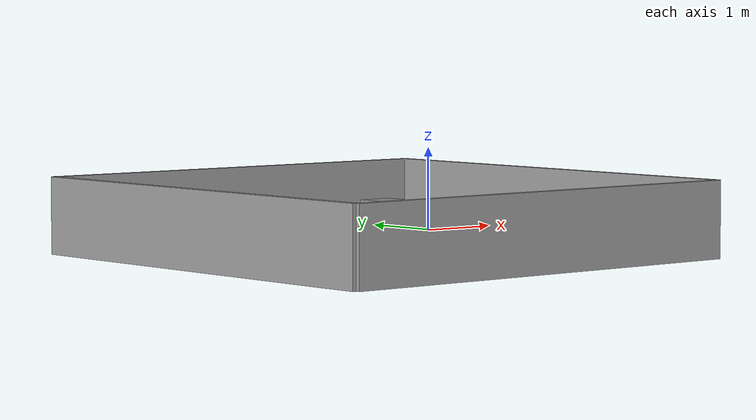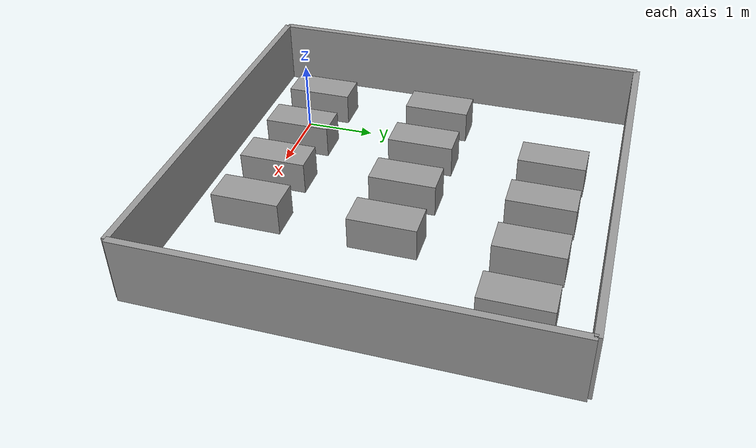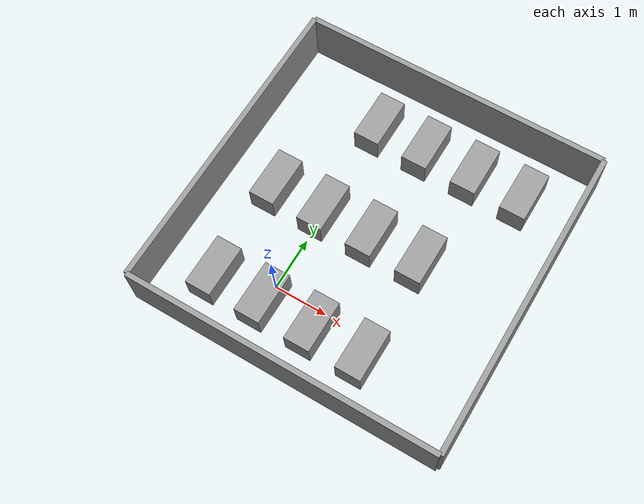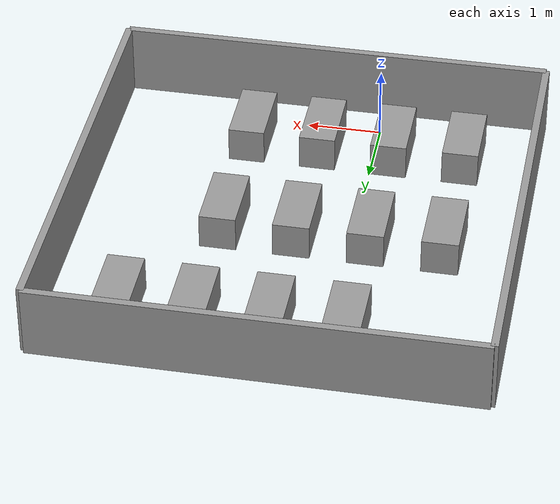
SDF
<?xml version='1.0'?>
<sdf version='1.7'>
  <model name='map_model'>
    <link name='link_0_clone'>
      <inertial>
        <mass>1</mass>
        <inertia>
          <ixx>0.166667</ixx>
          <ixy>0</ixy>
          <ixz>0</ixz>
          <iyy>0.166667</iyy>
          <iyz>0</iyz>
          <izz>0.166667</izz>
        </inertia>
        <pose>0 0 0 0 -0 0</pose>
      </inertial>
      <pose>0.836322 -1.19926 -0 0 -0 0</pose>
      <gravity>1</gravity>
      <self_collide>0</self_collide>
      <kinematic>0</kinematic>
      <enable_wind>0</enable_wind>
      <visual name='visual'>
        <pose>0 0 0 0 -0 0</pose>
        <geometry>
          <box>
            <size>6 0.1 1</size>
          </box>
        </geometry>
        <material>
          <lighting>1</lighting>
          <script>
            <uri>file://media/materials/scripts/gazebo.material</uri>
            <name>Gazebo/Grey</name>
          </script>
          <shader type='pixel'>
            <normal_map>__default__</normal_map>
          </shader>
          <ambient>0.3 0.3 0.3 1</ambient>
          <diffuse>0.7 0.7 0.7 1</diffuse>
          <specular>0.01 0.01 0.01 1</specular>
          <emissive>0 0 0 1</emissive>
        </material>
        <transparency>0</transparency>
        <cast_shadows>1</cast_shadows>
      </visual>
      <collision name='collision'>
        <laser_retro>0</laser_retro>
        <max_contacts>10</max_contacts>
        <pose>0 0 0 0 -0 0</pose>
        <geometry>
          <box>
            <size>6 0.1 1</size>
          </box>
        </geometry>
        <surface>
          <friction>
            <ode>
              <mu>1</mu>
              <mu2>1</mu2>
              <fdir1>0 0 0</fdir1>
              <slip1>0</slip1>
              <slip2>0</slip2>
            </ode>
            <torsional>
              <coefficient>1</coefficient>
              <patch_radius>0</patch_radius>
              <surface_radius>0</surface_radius>
              <use_patch_radius>1</use_patch_radius>
              <ode>
                <slip>0</slip>
              </ode>
            </torsional>
          </friction>
          <bounce>
            <restitution_coefficient>0</restitution_coefficient>
            <threshold>1e+06</threshold>
          </bounce>
          <contact>
            <collide_without_contact>0</collide_without_contact>
            <collide_without_contact_bitmask>1</collide_without_contact_bitmask>
            <collide_bitmask>1</collide_bitmask>
            <ode>
              <soft_cfm>0</soft_cfm>
              <soft_erp>0.2</soft_erp>
              <kp>1e+13</kp>
              <kd>1</kd>
              <max_vel>0.01</max_vel>
              <min_depth>0</min_depth>
            </ode>
            <bullet>
              <split_impulse>1</split_impulse>
              <split_impulse_penetration_threshold>-0.01</split_impulse_penetration_threshold>
              <soft_cfm>0</soft_cfm>
              <soft_erp>0.2</soft_erp>
              <kp>1e+13</kp>
              <kd>1</kd>
            </bullet>
          </contact>
        </surface>
      </collision>
    </link>
    <link name='link_0_clone_0'>
      <inertial>
        <mass>1</mass>
        <inertia>
          <ixx>0.166667</ixx>
          <ixy>0</ixy>
          <ixz>0</ixz>
          <iyy>0.166667</iyy>
          <iyz>0</iyz>
          <izz>0.166667</izz>
        </inertia>
        <pose>0 0 0 0 -0 0</pose>
      </inertial>
      <pose>0.836322 4.80074 0 0 -0 0</pose>
      <gravity>1</gravity>
      <self_collide>0</self_collide>
      <kinematic>0</kinematic>
      <enable_wind>0</enable_wind>
      <visual name='visual'>
        <pose>0 0 0 0 -0 0</pose>
        <geometry>
          <box>
            <size>6 0.1 1</size>
          </box>
        </geometry>
        <material>
          <lighting>1</lighting>
          <script>
            <uri>file://media/materials/scripts/gazebo.material</uri>
            <name>Gazebo/Grey</name>
          </script>
          <shader type='pixel'>
            <normal_map>__default__</normal_map>
          </shader>
          <ambient>0.3 0.3 0.3 1</ambient>
          <diffuse>0.7 0.7 0.7 1</diffuse>
          <specular>0.01 0.01 0.01 1</specular>
          <emissive>0 0 0 1</emissive>
        </material>
        <transparency>0</transparency>
        <cast_shadows>1</cast_shadows>
      </visual>
      <collision name='collision'>
        <laser_retro>0</laser_retro>
        <max_contacts>10</max_contacts>
        <pose>0 0 0 0 -0 0</pose>
        <geometry>
          <box>
            <size>6 0.1 1</size>
          </box>
        </geometry>
        <surface>
          <friction>
            <ode>
              <mu>1</mu>
              <mu2>1</mu2>
              <fdir1>0 0 0</fdir1>
              <slip1>0</slip1>
              <slip2>0</slip2>
            </ode>
            <torsional>
              <coefficient>1</coefficient>
              <patch_radius>0</patch_radius>
              <surface_radius>0</surface_radius>
              <use_patch_radius>1</use_patch_radius>
              <ode>
                <slip>0</slip>
              </ode>
            </torsional>
          </friction>
          <bounce>
            <restitution_coefficient>0</restitution_coefficient>
            <threshold>1e+06</threshold>
          </bounce>
          <contact>
            <collide_without_contact>0</collide_without_contact>
            <collide_without_contact_bitmask>1</collide_without_contact_bitmask>
            <collide_bitmask>1</collide_bitmask>
            <ode>
              <soft_cfm>0</soft_cfm>
              <soft_erp>0.2</soft_erp>
              <kp>1e+13</kp>
              <kd>1</kd>
              <max_vel>0.01</max_vel>
              <min_depth>0</min_depth>
            </ode>
            <bullet>
              <split_impulse>1</split_impulse>
              <split_impulse_penetration_threshold>-0.01</split_impulse_penetration_threshold>
              <soft_cfm>0</soft_cfm>
              <soft_erp>0.2</soft_erp>
              <kp>1e+13</kp>
              <kd>1</kd>
            </bullet>
          </contact>
        </surface>
      </collision>
    </link>
    <link name='link_0_clone_1'>
      <inertial>
        <mass>1</mass>
        <inertia>
          <ixx>0.166667</ixx>
          <ixy>0</ixy>
          <ixz>0</ixz>
          <iyy>0.166667</iyy>
          <iyz>0</iyz>
          <izz>0.166667</izz>
        </inertia>
        <pose>0 0 0 0 -0 0</pose>
      </inertial>
      <pose>3.83632 1.80074 0 0 -0 0</pose>
      <gravity>1</gravity>
      <self_collide>0</self_collide>
      <kinematic>0</kinematic>
      <enable_wind>0</enable_wind>
      <visual name='visual'>
        <pose>0 0 0 0 -0 0</pose>
        <geometry>
          <box>
            <size>0.1 6 1</size>
          </box>
        </geometry>
        <material>
          <lighting>1</lighting>
          <script>
            <uri>file://media/materials/scripts/gazebo.material</uri>
            <name>Gazebo/Grey</name>
          </script>
          <shader type='pixel'>
            <normal_map>__default__</normal_map>
          </shader>
          <ambient>0.3 0.3 0.3 1</ambient>
          <diffuse>0.7 0.7 0.7 1</diffuse>
          <specular>0.01 0.01 0.01 1</specular>
          <emissive>0 0 0 1</emissive>
        </material>
        <transparency>0</transparency>
        <cast_shadows>1</cast_shadows>
      </visual>
      <collision name='collision'>
        <laser_retro>0</laser_retro>
        <max_contacts>10</max_contacts>
        <pose>0 0 0 0 -0 0</pose>
        <geometry>
          <box>
            <size>0.1 6 1</size>
          </box>
        </geometry>
        <surface>
          <friction>
            <ode>
              <mu>1</mu>
              <mu2>1</mu2>
              <fdir1>0 0 0</fdir1>
              <slip1>0</slip1>
              <slip2>0</slip2>
            </ode>
            <torsional>
              <coefficient>1</coefficient>
              <patch_radius>0</patch_radius>
              <surface_radius>0</surface_radius>
              <use_patch_radius>1</use_patch_radius>
              <ode>
                <slip>0</slip>
              </ode>
            </torsional>
          </friction>
          <bounce>
            <restitution_coefficient>0</restitution_coefficient>
            <threshold>1e+06</threshold>
          </bounce>
          <contact>
            <collide_without_contact>0</collide_without_contact>
            <collide_without_contact_bitmask>1</collide_without_contact_bitmask>
            <collide_bitmask>1</collide_bitmask>
            <ode>
              <soft_cfm>0</soft_cfm>
              <soft_erp>0.2</soft_erp>
              <kp>1e+13</kp>
              <kd>1</kd>
              <max_vel>0.01</max_vel>
              <min_depth>0</min_depth>
            </ode>
            <bullet>
              <split_impulse>1</split_impulse>
              <split_impulse_penetration_threshold>-0.01</split_impulse_penetration_threshold>
              <soft_cfm>0</soft_cfm>
              <soft_erp>0.2</soft_erp>
              <kp>1e+13</kp>
              <kd>1</kd>
            </bullet>
          </contact>
        </surface>
      </collision>
    </link>
    <link name='link_0_clone_1_clone'>
      <inertial>
        <mass>1</mass>
        <inertia>
          <ixx>0.166667</ixx>
          <ixy>0</ixy>
          <ixz>0</ixz>
          <iyy>0.166667</iyy>
          <iyz>0</iyz>
          <izz>0.166667</izz>
        </inertia>
        <pose>0 0 0 0 -0 0</pose>
      </inertial>
      <pose>-2.16368 1.80074 0 0 -0 0</pose>
      <gravity>1</gravity>
      <self_collide>0</self_collide>
      <kinematic>0</kinematic>
      <enable_wind>0</enable_wind>
      <visual name='visual'>
        <pose>0 0 0 0 -0 0</pose>
        <geometry>
          <box>
            <size>0.1 6 1</size>
          </box>
        </geometry>
        <material>
          <lighting>1</lighting>
          <script>
            <uri>file://media/materials/scripts/gazebo.material</uri>
            <name>Gazebo/Grey</name>
          </script>
          <shader type='pixel'>
            <normal_map>__default__</normal_map>
          </shader>
          <ambient>0.3 0.3 0.3 1</ambient>
          <diffuse>0.7 0.7 0.7 1</diffuse>
          <specular>0.01 0.01 0.01 1</specular>
          <emissive>0 0 0 1</emissive>
        </material>
        <transparency>0</transparency>
        <cast_shadows>1</cast_shadows>
      </visual>
      <collision name='collision'>
        <laser_retro>0</laser_retro>
        <max_contacts>10</max_contacts>
        <pose>0 0 0 0 -0 0</pose>
        <geometry>
          <box>
            <size>0.1 6 1</size>
          </box>
        </geometry>
        <surface>
          <friction>
            <ode>
              <mu>1</mu>
              <mu2>1</mu2>
              <fdir1>0 0 0</fdir1>
              <slip1>0</slip1>
              <slip2>0</slip2>
            </ode>
            <torsional>
              <coefficient>1</coefficient>
              <patch_radius>0</patch_radius>
              <surface_radius>0</surface_radius>
              <use_patch_radius>1</use_patch_radius>
              <ode>
                <slip>0</slip>
              </ode>
            </torsional>
          </friction>
          <bounce>
            <restitution_coefficient>0</restitution_coefficient>
            <threshold>1e+06</threshold>
          </bounce>
          <contact>
            <collide_without_contact>0</collide_without_contact>
            <collide_without_contact_bitmask>1</collide_without_contact_bitmask>
            <collide_bitmask>1</collide_bitmask>
            <ode>
              <soft_cfm>0</soft_cfm>
              <soft_erp>0.2</soft_erp>
              <kp>1e+13</kp>
              <kd>1</kd>
              <max_vel>0.01</max_vel>
              <min_depth>0</min_depth>
            </ode>
            <bullet>
              <split_impulse>1</split_impulse>
              <split_impulse_penetration_threshold>-0.01</split_impulse_penetration_threshold>
              <soft_cfm>0</soft_cfm>
              <soft_erp>0.2</soft_erp>
              <kp>1e+13</kp>
              <kd>1</kd>
            </bullet>
          </contact>
        </surface>
      </collision>
    </link>
    <link name='link_1_clone'>
      <inertial>
        <mass>1</mass>
        <inertia>
          <ixx>0.166667</ixx>
          <ixy>0</ixy>
          <ixz>0</ixz>
          <iyy>0.166667</iyy>
          <iyz>0</iyz>
          <izz>0.166667</izz>
        </inertia>
        <pose>0 0 0 0 -0 0</pose>
      </inertial>
      <pose>1.83632 1.80074 -0.25 0 -0 0</pose>
      <gravity>1</gravity>
      <self_collide>0</self_collide>
      <kinematic>0</kinematic>
      <enable_wind>0</enable_wind>
      <visual name='visual'>
        <pose>0 0 0 0 -0 0</pose>
        <geometry>
          <box>
            <size>0.5 1 0.5</size>
          </box>
        </geometry>
        <material>
          <lighting>1</lighting>
          <script>
            <uri>file://media/materials/scripts/gazebo.material</uri>
            <name>Gazebo/Grey</name>
          </script>
          <shader type='pixel'>
            <normal_map>__default__</normal_map>
          </shader>
          <ambient>0.3 0.3 0.3 1</ambient>
          <diffuse>0.7 0.7 0.7 1</diffuse>
          <specular>0.01 0.01 0.01 1</specular>
          <emissive>0 0 0 1</emissive>
        </material>
        <transparency>0</transparency>
        <cast_shadows>1</cast_shadows>
      </visual>
      <collision name='collision'>
        <laser_retro>0</laser_retro>
        <max_contacts>10</max_contacts>
        <pose>0 0 0 0 -0 0</pose>
        <geometry>
          <box>
            <size>0.5 1 0.5</size>
          </box>
        </geometry>
        <surface>
          <friction>
            <ode>
              <mu>1</mu>
              <mu2>1</mu2>
              <fdir1>0 0 0</fdir1>
              <slip1>0</slip1>
              <slip2>0</slip2>
            </ode>
            <torsional>
              <coefficient>1</coefficient>
              <patch_radius>0</patch_radius>
              <surface_radius>0</surface_radius>
              <use_patch_radius>1</use_patch_radius>
              <ode>
                <slip>0</slip>
              </ode>
            </torsional>
          </friction>
          <bounce>
            <restitution_coefficient>0</restitution_coefficient>
            <threshold>1e+06</threshold>
          </bounce>
          <contact>
            <collide_without_contact>0</collide_without_contact>
            <collide_without_contact_bitmask>1</collide_without_contact_bitmask>
            <collide_bitmask>1</collide_bitmask>
            <ode>
              <soft_cfm>0</soft_cfm>
              <soft_erp>0.2</soft_erp>
              <kp>1e+13</kp>
              <kd>1</kd>
              <max_vel>0.01</max_vel>
              <min_depth>0</min_depth>
            </ode>
            <bullet>
              <split_impulse>1</split_impulse>
              <split_impulse_penetration_threshold>-0.01</split_impulse_penetration_threshold>
              <soft_cfm>0</soft_cfm>
              <soft_erp>0.2</soft_erp>
              <kp>1e+13</kp>
              <kd>1</kd>
            </bullet>
          </contact>
        </surface>
      </collision>
    </link>
    <link name='link_1_clone_clone'>
      <inertial>
        <mass>1</mass>
        <inertia>
          <ixx>0.166667</ixx>
          <ixy>0</ixy>
          <ixz>0</ixz>
          <iyy>0.166667</iyy>
          <iyz>0</iyz>
          <izz>0.166667</izz>
        </inertia>
        <pose>0 0 0 0 -0 0</pose>
      </inertial>
      <pose>-1.16368 -0.19926 -0.25 0 -0 0</pose>
      <gravity>1</gravity>
      <self_collide>0</self_collide>
      <kinematic>0</kinematic>
      <enable_wind>0</enable_wind>
      <visual name='visual'>
        <pose>0 0 0 0 -0 0</pose>
        <geometry>
          <box>
            <size>0.5 1 0.5</size>
          </box>
        </geometry>
        <material>
          <lighting>1</lighting>
          <script>
            <uri>file://media/materials/scripts/gazebo.material</uri>
            <name>Gazebo/Grey</name>
          </script>
          <shader type='pixel'>
            <normal_map>__default__</normal_map>
          </shader>
          <ambient>0.3 0.3 0.3 1</ambient>
          <diffuse>0.7 0.7 0.7 1</diffuse>
          <specular>0.01 0.01 0.01 1</specular>
          <emissive>0 0 0 1</emissive>
        </material>
        <transparency>0</transparency>
        <cast_shadows>1</cast_shadows>
      </visual>
      <collision name='collision'>
        <laser_retro>0</laser_retro>
        <max_contacts>10</max_contacts>
        <pose>0 0 0 0 -0 0</pose>
        <geometry>
          <box>
            <size>0.5 1 0.5</size>
          </box>
        </geometry>
        <surface>
          <friction>
            <ode>
              <mu>1</mu>
              <mu2>1</mu2>
              <fdir1>0 0 0</fdir1>
              <slip1>0</slip1>
              <slip2>0</slip2>
            </ode>
            <torsional>
              <coefficient>1</coefficient>
              <patch_radius>0</patch_radius>
              <surface_radius>0</surface_radius>
              <use_patch_radius>1</use_patch_radius>
              <ode>
                <slip>0</slip>
              </ode>
            </torsional>
          </friction>
          <bounce>
            <restitution_coefficient>0</restitution_coefficient>
            <threshold>1e+06</threshold>
          </bounce>
          <contact>
            <collide_without_contact>0</collide_without_contact>
            <collide_without_contact_bitmask>1</collide_without_contact_bitmask>
            <collide_bitmask>1</collide_bitmask>
            <ode>
              <soft_cfm>0</soft_cfm>
              <soft_erp>0.2</soft_erp>
              <kp>1e+13</kp>
              <kd>1</kd>
              <max_vel>0.01</max_vel>
              <min_depth>0</min_depth>
            </ode>
            <bullet>
              <split_impulse>1</split_impulse>
              <split_impulse_penetration_threshold>-0.01</split_impulse_penetration_threshold>
              <soft_cfm>0</soft_cfm>
              <soft_erp>0.2</soft_erp>
              <kp>1e+13</kp>
              <kd>1</kd>
            </bullet>
          </contact>
        </surface>
      </collision>
    </link>
    <link name='link_1_clone_clone_0'>
      <inertial>
        <mass>1</mass>
        <inertia>
          <ixx>0.166667</ixx>
          <ixy>0</ixy>
          <ixz>0</ixz>
          <iyy>0.166667</iyy>
          <iyz>0</iyz>
          <izz>0.166667</izz>
        </inertia>
        <pose>0 0 0 0 -0 0</pose>
      </inertial>
      <pose>-0.163678 -0.19926 -0.25 0 -0 0</pose>
      <gravity>1</gravity>
      <self_collide>0</self_collide>
      <kinematic>0</kinematic>
      <enable_wind>0</enable_wind>
      <visual name='visual'>
        <pose>0 0 0 0 -0 0</pose>
        <geometry>
          <box>
            <size>0.5 1 0.5</size>
          </box>
        </geometry>
        <material>
          <lighting>1</lighting>
          <script>
            <uri>file://media/materials/scripts/gazebo.material</uri>
            <name>Gazebo/Grey</name>
          </script>
          <shader type='pixel'>
            <normal_map>__default__</normal_map>
          </shader>
          <ambient>0.3 0.3 0.3 1</ambient>
          <diffuse>0.7 0.7 0.7 1</diffuse>
          <specular>0.01 0.01 0.01 1</specular>
          <emissive>0 0 0 1</emissive>
        </material>
        <transparency>0</transparency>
        <cast_shadows>1</cast_shadows>
      </visual>
      <collision name='collision'>
        <laser_retro>0</laser_retro>
        <max_contacts>10</max_contacts>
        <pose>0 0 0 0 -0 0</pose>
        <geometry>
          <box>
            <size>0.5 1 0.5</size>
          </box>
        </geometry>
        <surface>
          <friction>
            <ode>
              <mu>1</mu>
              <mu2>1</mu2>
              <fdir1>0 0 0</fdir1>
              <slip1>0</slip1>
              <slip2>0</slip2>
            </ode>
            <torsional>
              <coefficient>1</coefficient>
              <patch_radius>0</patch_radius>
              <surface_radius>0</surface_radius>
              <use_patch_radius>1</use_patch_radius>
              <ode>
                <slip>0</slip>
              </ode>
            </torsional>
          </friction>
          <bounce>
            <restitution_coefficient>0</restitution_coefficient>
            <threshold>1e+06</threshold>
          </bounce>
          <contact>
            <collide_without_contact>0</collide_without_contact>
            <collide_without_contact_bitmask>1</collide_without_contact_bitmask>
            <collide_bitmask>1</collide_bitmask>
            <ode>
              <soft_cfm>0</soft_cfm>
              <soft_erp>0.2</soft_erp>
              <kp>1e+13</kp>
              <kd>1</kd>
              <max_vel>0.01</max_vel>
              <min_depth>0</min_depth>
            </ode>
            <bullet>
              <split_impulse>1</split_impulse>
              <split_impulse_penetration_threshold>-0.01</split_impulse_penetration_threshold>
              <soft_cfm>0</soft_cfm>
              <soft_erp>0.2</soft_erp>
              <kp>1e+13</kp>
              <kd>1</kd>
            </bullet>
          </contact>
        </surface>
      </collision>
    </link>
    <link name='link_1_clone_clone_1'>
      <inertial>
        <mass>1</mass>
        <inertia>
          <ixx>0.166667</ixx>
          <ixy>0</ixy>
          <ixz>0</ixz>
          <iyy>0.166667</iyy>
          <iyz>0</iyz>
          <izz>0.166667</izz>
        </inertia>
        <pose>0 0 0 0 -0 0</pose>
      </inertial>
      <pose>0.836322 -0.19926 -0.25 0 -0 0</pose>
      <gravity>1</gravity>
      <self_collide>0</self_collide>
      <kinematic>0</kinematic>
      <enable_wind>0</enable_wind>
      <visual name='visual'>
        <pose>0 0 0 0 -0 0</pose>
        <geometry>
          <box>
            <size>0.5 1 0.5</size>
          </box>
        </geometry>
        <material>
          <lighting>1</lighting>
          <script>
            <uri>file://media/materials/scripts/gazebo.material</uri>
            <name>Gazebo/Grey</name>
          </script>
          <shader type='pixel'>
            <normal_map>__default__</normal_map>
          </shader>
          <ambient>0.3 0.3 0.3 1</ambient>
          <diffuse>0.7 0.7 0.7 1</diffuse>
          <specular>0.01 0.01 0.01 1</specular>
          <emissive>0 0 0 1</emissive>
        </material>
        <transparency>0</transparency>
        <cast_shadows>1</cast_shadows>
      </visual>
      <collision name='collision'>
        <laser_retro>0</laser_retro>
        <max_contacts>10</max_contacts>
        <pose>0 0 0 0 -0 0</pose>
        <geometry>
          <box>
            <size>0.5 1 0.5</size>
          </box>
        </geometry>
        <surface>
          <friction>
            <ode>
              <mu>1</mu>
              <mu2>1</mu2>
              <fdir1>0 0 0</fdir1>
              <slip1>0</slip1>
              <slip2>0</slip2>
            </ode>
            <torsional>
              <coefficient>1</coefficient>
              <patch_radius>0</patch_radius>
              <surface_radius>0</surface_radius>
              <use_patch_radius>1</use_patch_radius>
              <ode>
                <slip>0</slip>
              </ode>
            </torsional>
          </friction>
          <bounce>
            <restitution_coefficient>0</restitution_coefficient>
            <threshold>1e+06</threshold>
          </bounce>
          <contact>
            <collide_without_contact>0</collide_without_contact>
            <collide_without_contact_bitmask>1</collide_without_contact_bitmask>
            <collide_bitmask>1</collide_bitmask>
            <ode>
              <soft_cfm>0</soft_cfm>
              <soft_erp>0.2</soft_erp>
              <kp>1e+13</kp>
              <kd>1</kd>
              <max_vel>0.01</max_vel>
              <min_depth>0</min_depth>
            </ode>
            <bullet>
              <split_impulse>1</split_impulse>
              <split_impulse_penetration_threshold>-0.01</split_impulse_penetration_threshold>
              <soft_cfm>0</soft_cfm>
              <soft_erp>0.2</soft_erp>
              <kp>1e+13</kp>
              <kd>1</kd>
            </bullet>
          </contact>
        </surface>
      </collision>
    </link>
    <link name='link_1_clone_clone_2'>
      <inertial>
        <mass>1</mass>
        <inertia>
          <ixx>0.166667</ixx>
          <ixy>0</ixy>
          <ixz>0</ixz>
          <iyy>0.166667</iyy>
          <iyz>0</iyz>
          <izz>0.166667</izz>
        </inertia>
        <pose>0 0 0 0 -0 0</pose>
      </inertial>
      <pose>1.83632 -0.19926 -0.25 0 -0 0</pose>
      <gravity>1</gravity>
      <self_collide>0</self_collide>
      <kinematic>0</kinematic>
      <enable_wind>0</enable_wind>
      <visual name='visual'>
        <pose>0 0 0 0 -0 0</pose>
        <geometry>
          <box>
            <size>0.5 1 0.5</size>
          </box>
        </geometry>
        <material>
          <lighting>1</lighting>
          <script>
            <uri>file://media/materials/scripts/gazebo.material</uri>
            <name>Gazebo/Grey</name>
          </script>
          <shader type='pixel'>
            <normal_map>__default__</normal_map>
          </shader>
          <ambient>0.3 0.3 0.3 1</ambient>
          <diffuse>0.7 0.7 0.7 1</diffuse>
          <specular>0.01 0.01 0.01 1</specular>
          <emissive>0 0 0 1</emissive>
        </material>
        <transparency>0</transparency>
        <cast_shadows>1</cast_shadows>
      </visual>
      <collision name='collision'>
        <laser_retro>0</laser_retro>
        <max_contacts>10</max_contacts>
        <pose>0 0 0 0 -0 0</pose>
        <geometry>
          <box>
            <size>0.5 1 0.5</size>
          </box>
        </geometry>
        <surface>
          <friction>
            <ode>
              <mu>1</mu>
              <mu2>1</mu2>
              <fdir1>0 0 0</fdir1>
              <slip1>0</slip1>
              <slip2>0</slip2>
            </ode>
            <torsional>
              <coefficient>1</coefficient>
              <patch_radius>0</patch_radius>
              <surface_radius>0</surface_radius>
              <use_patch_radius>1</use_patch_radius>
              <ode>
                <slip>0</slip>
              </ode>
            </torsional>
          </friction>
          <bounce>
            <restitution_coefficient>0</restitution_coefficient>
            <threshold>1e+06</threshold>
          </bounce>
          <contact>
            <collide_without_contact>0</collide_without_contact>
            <collide_without_contact_bitmask>1</collide_without_contact_bitmask>
            <collide_bitmask>1</collide_bitmask>
            <ode>
              <soft_cfm>0</soft_cfm>
              <soft_erp>0.2</soft_erp>
              <kp>1e+13</kp>
              <kd>1</kd>
              <max_vel>0.01</max_vel>
              <min_depth>0</min_depth>
            </ode>
            <bullet>
              <split_impulse>1</split_impulse>
              <split_impulse_penetration_threshold>-0.01</split_impulse_penetration_threshold>
              <soft_cfm>0</soft_cfm>
              <soft_erp>0.2</soft_erp>
              <kp>1e+13</kp>
              <kd>1</kd>
            </bullet>
          </contact>
        </surface>
      </collision>
    </link>
    <link name='link_1_clone_clone_3'>
      <inertial>
        <mass>1</mass>
        <inertia>
          <ixx>0.166667</ixx>
          <ixy>0</ixy>
          <ixz>0</ixz>
          <iyy>0.166667</iyy>
          <iyz>0</iyz>
          <izz>0.166667</izz>
        </inertia>
        <pose>0 0 0 0 -0 0</pose>
      </inertial>
      <pose>0.836322 1.80074 -0.25 0 -0 0</pose>
      <gravity>1</gravity>
      <self_collide>0</self_collide>
      <kinematic>0</kinematic>
      <enable_wind>0</enable_wind>
      <visual name='visual'>
        <pose>0 0 0 0 -0 0</pose>
        <geometry>
          <box>
            <size>0.5 1 0.5</size>
          </box>
        </geometry>
        <material>
          <lighting>1</lighting>
          <script>
            <uri>file://media/materials/scripts/gazebo.material</uri>
            <name>Gazebo/Grey</name>
          </script>
          <shader type='pixel'>
            <normal_map>__default__</normal_map>
          </shader>
          <ambient>0.3 0.3 0.3 1</ambient>
          <diffuse>0.7 0.7 0.7 1</diffuse>
          <specular>0.01 0.01 0.01 1</specular>
          <emissive>0 0 0 1</emissive>
        </material>
        <transparency>0</transparency>
        <cast_shadows>1</cast_shadows>
      </visual>
      <collision name='collision'>
        <laser_retro>0</laser_retro>
        <max_contacts>10</max_contacts>
        <pose>0 0 0 0 -0 0</pose>
        <geometry>
          <box>
            <size>0.5 1 0.5</size>
          </box>
        </geometry>
        <surface>
          <friction>
            <ode>
              <mu>1</mu>
              <mu2>1</mu2>
              <fdir1>0 0 0</fdir1>
              <slip1>0</slip1>
              <slip2>0</slip2>
            </ode>
            <torsional>
              <coefficient>1</coefficient>
              <patch_radius>0</patch_radius>
              <surface_radius>0</surface_radius>
              <use_patch_radius>1</use_patch_radius>
              <ode>
                <slip>0</slip>
              </ode>
            </torsional>
          </friction>
          <bounce>
            <restitution_coefficient>0</restitution_coefficient>
            <threshold>1e+06</threshold>
          </bounce>
          <contact>
            <collide_without_contact>0</collide_without_contact>
            <collide_without_contact_bitmask>1</collide_without_contact_bitmask>
            <collide_bitmask>1</collide_bitmask>
            <ode>
              <soft_cfm>0</soft_cfm>
              <soft_erp>0.2</soft_erp>
              <kp>1e+13</kp>
              <kd>1</kd>
              <max_vel>0.01</max_vel>
              <min_depth>0</min_depth>
            </ode>
            <bullet>
              <split_impulse>1</split_impulse>
              <split_impulse_penetration_threshold>-0.01</split_impulse_penetration_threshold>
              <soft_cfm>0</soft_cfm>
              <soft_erp>0.2</soft_erp>
              <kp>1e+13</kp>
              <kd>1</kd>
            </bullet>
          </contact>
        </surface>
      </collision>
    </link>
    <link name='link_1_clone_clone_4'>
      <inertial>
        <mass>1</mass>
        <inertia>
          <ixx>0.166667</ixx>
          <ixy>0</ixy>
          <ixz>0</ixz>
          <iyy>0.166667</iyy>
          <iyz>0</iyz>
          <izz>0.166667</izz>
        </inertia>
        <pose>0 0 0 0 -0 0</pose>
      </inertial>
      <pose>-1.16368 1.80074 -0.25 0 -0 0</pose>
      <gravity>1</gravity>
      <self_collide>0</self_collide>
      <kinematic>0</kinematic>
      <enable_wind>0</enable_wind>
      <visual name='visual'>
        <pose>0 0 0 0 -0 0</pose>
        <geometry>
          <box>
            <size>0.5 1 0.5</size>
          </box>
        </geometry>
        <material>
          <lighting>1</lighting>
          <script>
            <uri>file://media/materials/scripts/gazebo.material</uri>
            <name>Gazebo/Grey</name>
          </script>
          <shader type='pixel'>
            <normal_map>__default__</normal_map>
          </shader>
          <ambient>0.3 0.3 0.3 1</ambient>
          <diffuse>0.7 0.7 0.7 1</diffuse>
          <specular>0.01 0.01 0.01 1</specular>
          <emissive>0 0 0 1</emissive>
        </material>
        <transparency>0</transparency>
        <cast_shadows>1</cast_shadows>
      </visual>
      <collision name='collision'>
        <laser_retro>0</laser_retro>
        <max_contacts>10</max_contacts>
        <pose>0 0 0 0 -0 0</pose>
        <geometry>
          <box>
            <size>0.5 1 0.5</size>
          </box>
        </geometry>
        <surface>
          <friction>
            <ode>
              <mu>1</mu>
              <mu2>1</mu2>
              <fdir1>0 0 0</fdir1>
              <slip1>0</slip1>
              <slip2>0</slip2>
            </ode>
            <torsional>
              <coefficient>1</coefficient>
              <patch_radius>0</patch_radius>
              <surface_radius>0</surface_radius>
              <use_patch_radius>1</use_patch_radius>
              <ode>
                <slip>0</slip>
              </ode>
            </torsional>
          </friction>
          <bounce>
            <restitution_coefficient>0</restitution_coefficient>
            <threshold>1e+06</threshold>
          </bounce>
          <contact>
            <collide_without_contact>0</collide_without_contact>
            <collide_without_contact_bitmask>1</collide_without_contact_bitmask>
            <collide_bitmask>1</collide_bitmask>
            <ode>
              <soft_cfm>0</soft_cfm>
              <soft_erp>0.2</soft_erp>
              <kp>1e+13</kp>
              <kd>1</kd>
              <max_vel>0.01</max_vel>
              <min_depth>0</min_depth>
            </ode>
            <bullet>
              <split_impulse>1</split_impulse>
              <split_impulse_penetration_threshold>-0.01</split_impulse_penetration_threshold>
              <soft_cfm>0</soft_cfm>
              <soft_erp>0.2</soft_erp>
              <kp>1e+13</kp>
              <kd>1</kd>
            </bullet>
          </contact>
        </surface>
      </collision>
    </link>
    <link name='link_1_clone_clone_5'>
      <inertial>
        <mass>1</mass>
        <inertia>
          <ixx>0.166667</ixx>
          <ixy>0</ixy>
          <ixz>0</ixz>
          <iyy>0.166667</iyy>
          <iyz>0</iyz>
          <izz>0.166667</izz>
        </inertia>
        <pose>0 0 0 0 -0 0</pose>
      </inertial>
      <pose>-0.163678 1.80074 -0.25 0 -0 0</pose>
      <gravity>1</gravity>
      <self_collide>0</self_collide>
      <kinematic>0</kinematic>
      <enable_wind>0</enable_wind>
      <visual name='visual'>
        <pose>0 0 0 0 -0 0</pose>
        <geometry>
          <box>
            <size>0.5 1 0.5</size>
          </box>
        </geometry>
        <material>
          <lighting>1</lighting>
          <script>
            <uri>file://media/materials/scripts/gazebo.material</uri>
            <name>Gazebo/Grey</name>
          </script>
          <shader type='pixel'>
            <normal_map>__default__</normal_map>
          </shader>
          <ambient>0.3 0.3 0.3 1</ambient>
          <diffuse>0.7 0.7 0.7 1</diffuse>
          <specular>0.01 0.01 0.01 1</specular>
          <emissive>0 0 0 1</emissive>
        </material>
        <transparency>0</transparency>
        <cast_shadows>1</cast_shadows>
      </visual>
      <collision name='collision'>
        <laser_retro>0</laser_retro>
        <max_contacts>10</max_contacts>
        <pose>0 0 0 0 -0 0</pose>
        <geometry>
          <box>
            <size>0.5 1 0.5</size>
          </box>
        </geometry>
        <surface>
          <friction>
            <ode>
              <mu>1</mu>
              <mu2>1</mu2>
              <fdir1>0 0 0</fdir1>
              <slip1>0</slip1>
              <slip2>0</slip2>
            </ode>
            <torsional>
              <coefficient>1</coefficient>
              <patch_radius>0</patch_radius>
              <surface_radius>0</surface_radius>
              <use_patch_radius>1</use_patch_radius>
              <ode>
                <slip>0</slip>
              </ode>
            </torsional>
          </friction>
          <bounce>
            <restitution_coefficient>0</restitution_coefficient>
            <threshold>1e+06</threshold>
          </bounce>
          <contact>
            <collide_without_contact>0</collide_without_contact>
            <collide_without_contact_bitmask>1</collide_without_contact_bitmask>
            <collide_bitmask>1</collide_bitmask>
            <ode>
              <soft_cfm>0</soft_cfm>
              <soft_erp>0.2</soft_erp>
              <kp>1e+13</kp>
              <kd>1</kd>
              <max_vel>0.01</max_vel>
              <min_depth>0</min_depth>
            </ode>
            <bullet>
              <split_impulse>1</split_impulse>
              <split_impulse_penetration_threshold>-0.01</split_impulse_penetration_threshold>
              <soft_cfm>0</soft_cfm>
              <soft_erp>0.2</soft_erp>
              <kp>1e+13</kp>
              <kd>1</kd>
            </bullet>
          </contact>
        </surface>
      </collision>
    </link>
    <link name='link_1_clone_clone_6'>
      <inertial>
        <mass>1</mass>
        <inertia>
          <ixx>0.166667</ixx>
          <ixy>0</ixy>
          <ixz>0</ixz>
          <iyy>0.166667</iyy>
          <iyz>0</iyz>
          <izz>0.166667</izz>
        </inertia>
        <pose>0 0 0 0 -0 0</pose>
      </inertial>
      <pose>-0.163678 3.80074 -0.25 0 -0 0</pose>
      <gravity>1</gravity>
      <self_collide>0</self_collide>
      <kinematic>0</kinematic>
      <enable_wind>0</enable_wind>
      <visual name='visual'>
        <pose>0 0 0 0 -0 0</pose>
        <geometry>
          <box>
            <size>0.5 1 0.5</size>
          </box>
        </geometry>
        <material>
          <lighting>1</lighting>
          <script>
            <uri>file://media/materials/scripts/gazebo.material</uri>
            <name>Gazebo/Grey</name>
          </script>
          <shader type='pixel'>
            <normal_map>__default__</normal_map>
          </shader>
          <ambient>0.3 0.3 0.3 1</ambient>
          <diffuse>0.7 0.7 0.7 1</diffuse>
          <specular>0.01 0.01 0.01 1</specular>
          <emissive>0 0 0 1</emissive>
        </material>
        <transparency>0</transparency>
        <cast_shadows>1</cast_shadows>
      </visual>
      <collision name='collision'>
        <laser_retro>0</laser_retro>
        <max_contacts>10</max_contacts>
        <pose>0 0 0 0 -0 0</pose>
        <geometry>
          <box>
            <size>0.5 1 0.5</size>
          </box>
        </geometry>
        <surface>
          <friction>
            <ode>
              <mu>1</mu>
              <mu2>1</mu2>
              <fdir1>0 0 0</fdir1>
              <slip1>0</slip1>
              <slip2>0</slip2>
            </ode>
            <torsional>
              <coefficient>1</coefficient>
              <patch_radius>0</patch_radius>
              <surface_radius>0</surface_radius>
              <use_patch_radius>1</use_patch_radius>
              <ode>
                <slip>0</slip>
              </ode>
            </torsional>
          </friction>
          <bounce>
            <restitution_coefficient>0</restitution_coefficient>
            <threshold>1e+06</threshold>
          </bounce>
          <contact>
            <collide_without_contact>0</collide_without_contact>
            <collide_without_contact_bitmask>1</collide_without_contact_bitmask>
            <collide_bitmask>1</collide_bitmask>
            <ode>
              <soft_cfm>0</soft_cfm>
              <soft_erp>0.2</soft_erp>
              <kp>1e+13</kp>
              <kd>1</kd>
              <max_vel>0.01</max_vel>
              <min_depth>0</min_depth>
            </ode>
            <bullet>
              <split_impulse>1</split_impulse>
              <split_impulse_penetration_threshold>-0.01</split_impulse_penetration_threshold>
              <soft_cfm>0</soft_cfm>
              <soft_erp>0.2</soft_erp>
              <kp>1e+13</kp>
              <kd>1</kd>
            </bullet>
          </contact>
        </surface>
      </collision>
    </link>
    <link name='link_1_clone_clone_7'>
      <inertial>
        <mass>1</mass>
        <inertia>
          <ixx>0.166667</ixx>
          <ixy>0</ixy>
          <ixz>0</ixz>
          <iyy>0.166667</iyy>
          <iyz>0</iyz>
          <izz>0.166667</izz>
        </inertia>
        <pose>0 0 0 0 -0 0</pose>
      </inertial>
      <pose>0.836322 3.80074 -0.25 0 -0 0</pose>
      <gravity>1</gravity>
      <self_collide>0</self_collide>
      <kinematic>0</kinematic>
      <enable_wind>0</enable_wind>
      <visual name='visual'>
        <pose>0 0 0 0 -0 0</pose>
        <geometry>
          <box>
            <size>0.5 1 0.5</size>
          </box>
        </geometry>
        <material>
          <lighting>1</lighting>
          <script>
            <uri>file://media/materials/scripts/gazebo.material</uri>
            <name>Gazebo/Grey</name>
          </script>
          <shader type='pixel'>
            <normal_map>__default__</normal_map>
          </shader>
          <ambient>0.3 0.3 0.3 1</ambient>
          <diffuse>0.7 0.7 0.7 1</diffuse>
          <specular>0.01 0.01 0.01 1</specular>
          <emissive>0 0 0 1</emissive>
        </material>
        <transparency>0</transparency>
        <cast_shadows>1</cast_shadows>
      </visual>
      <collision name='collision'>
        <laser_retro>0</laser_retro>
        <max_contacts>10</max_contacts>
        <pose>0 0 0 0 -0 0</pose>
        <geometry>
          <box>
            <size>0.5 1 0.5</size>
          </box>
        </geometry>
        <surface>
          <friction>
            <ode>
              <mu>1</mu>
              <mu2>1</mu2>
              <fdir1>0 0 0</fdir1>
              <slip1>0</slip1>
              <slip2>0</slip2>
            </ode>
            <torsional>
              <coefficient>1</coefficient>
              <patch_radius>0</patch_radius>
              <surface_radius>0</surface_radius>
              <use_patch_radius>1</use_patch_radius>
              <ode>
                <slip>0</slip>
              </ode>
            </torsional>
          </friction>
          <bounce>
            <restitution_coefficient>0</restitution_coefficient>
            <threshold>1e+06</threshold>
          </bounce>
          <contact>
            <collide_without_contact>0</collide_without_contact>
            <collide_without_contact_bitmask>1</collide_without_contact_bitmask>
            <collide_bitmask>1</collide_bitmask>
            <ode>
              <soft_cfm>0</soft_cfm>
              <soft_erp>0.2</soft_erp>
              <kp>1e+13</kp>
              <kd>1</kd>
              <max_vel>0.01</max_vel>
              <min_depth>0</min_depth>
            </ode>
            <bullet>
              <split_impulse>1</split_impulse>
              <split_impulse_penetration_threshold>-0.01</split_impulse_penetration_threshold>
              <soft_cfm>0</soft_cfm>
              <soft_erp>0.2</soft_erp>
              <kp>1e+13</kp>
              <kd>1</kd>
            </bullet>
          </contact>
        </surface>
      </collision>
    </link>
    <link name='link_1_clone_clone_8'>
      <inertial>
        <mass>1</mass>
        <inertia>
          <ixx>0.166667</ixx>
          <ixy>0</ixy>
          <ixz>0</ixz>
          <iyy>0.166667</iyy>
          <iyz>0</iyz>
          <izz>0.166667</izz>
        </inertia>
        <pose>0 0 0 0 -0 0</pose>
      </inertial>
      <pose>1.83632 3.80074 -0.25 0 -0 0</pose>
      <gravity>1</gravity>
      <self_collide>0</self_collide>
      <kinematic>0</kinematic>
      <enable_wind>0</enable_wind>
      <visual name='visual'>
        <pose>0 0 0 0 -0 0</pose>
        <geometry>
          <box>
            <size>0.5 1 0.5</size>
          </box>
        </geometry>
        <material>
          <lighting>1</lighting>
          <script>
            <uri>file://media/materials/scripts/gazebo.material</uri>
            <name>Gazebo/Grey</name>
          </script>
          <shader type='pixel'>
            <normal_map>__default__</normal_map>
          </shader>
          <ambient>0.3 0.3 0.3 1</ambient>
          <diffuse>0.7 0.7 0.7 1</diffuse>
          <specular>0.01 0.01 0.01 1</specular>
          <emissive>0 0 0 1</emissive>
        </material>
        <transparency>0</transparency>
        <cast_shadows>1</cast_shadows>
      </visual>
      <collision name='collision'>
        <laser_retro>0</laser_retro>
        <max_contacts>10</max_contacts>
        <pose>0 0 0 0 -0 0</pose>
        <geometry>
          <box>
            <size>0.5 1 0.5</size>
          </box>
        </geometry>
        <surface>
          <friction>
            <ode>
              <mu>1</mu>
              <mu2>1</mu2>
              <fdir1>0 0 0</fdir1>
              <slip1>0</slip1>
              <slip2>0</slip2>
            </ode>
            <torsional>
              <coefficient>1</coefficient>
              <patch_radius>0</patch_radius>
              <surface_radius>0</surface_radius>
              <use_patch_radius>1</use_patch_radius>
              <ode>
                <slip>0</slip>
              </ode>
            </torsional>
          </friction>
          <bounce>
            <restitution_coefficient>0</restitution_coefficient>
            <threshold>1e+06</threshold>
          </bounce>
          <contact>
            <collide_without_contact>0</collide_without_contact>
            <collide_without_contact_bitmask>1</collide_without_contact_bitmask>
            <collide_bitmask>1</collide_bitmask>
            <ode>
              <soft_cfm>0</soft_cfm>
              <soft_erp>0.2</soft_erp>
              <kp>1e+13</kp>
              <kd>1</kd>
              <max_vel>0.01</max_vel>
              <min_depth>0</min_depth>
            </ode>
            <bullet>
              <split_impulse>1</split_impulse>
              <split_impulse_penetration_threshold>-0.01</split_impulse_penetration_threshold>
              <soft_cfm>0</soft_cfm>
              <soft_erp>0.2</soft_erp>
              <kp>1e+13</kp>
              <kd>1</kd>
            </bullet>
          </contact>
        </surface>
      </collision>
    </link>
    <link name='link_1_clone_clone_9'>
      <inertial>
        <mass>1</mass>
        <inertia>
          <ixx>0.166667</ixx>
          <ixy>0</ixy>
          <ixz>0</ixz>
          <iyy>0.166667</iyy>
          <iyz>0</iyz>
          <izz>0.166667</izz>
        </inertia>
        <pose>0 0 0 0 -0 0</pose>
      </inertial>
      <pose>2.83632 3.80074 -0.25 0 -0 0</pose>
      <gravity>1</gravity>
      <self_collide>0</self_collide>
      <kinematic>0</kinematic>
      <enable_wind>0</enable_wind>
      <visual name='visual'>
        <pose>0 0 0 0 -0 0</pose>
        <geometry>
          <box>
            <size>0.5 1 0.5</size>
          </box>
        </geometry>
        <material>
          <lighting>1</lighting>
          <script>
            <uri>file://media/materials/scripts/gazebo.material</uri>
            <name>Gazebo/Grey</name>
          </script>
          <shader type='pixel'>
            <normal_map>__default__</normal_map>
          </shader>
          <ambient>0.3 0.3 0.3 1</ambient>
          <diffuse>0.7 0.7 0.7 1</diffuse>
          <specular>0.01 0.01 0.01 1</specular>
          <emissive>0 0 0 1</emissive>
        </material>
        <transparency>0</transparency>
        <cast_shadows>1</cast_shadows>
      </visual>
      <collision name='collision'>
        <laser_retro>0</laser_retro>
        <max_contacts>10</max_contacts>
        <pose>0 0 0 0 -0 0</pose>
        <geometry>
          <box>
            <size>0.5 1 0.5</size>
          </box>
        </geometry>
        <surface>
          <friction>
            <ode>
              <mu>1</mu>
              <mu2>1</mu2>
              <fdir1>0 0 0</fdir1>
              <slip1>0</slip1>
              <slip2>0</slip2>
            </ode>
            <torsional>
              <coefficient>1</coefficient>
              <patch_radius>0</patch_radius>
              <surface_radius>0</surface_radius>
              <use_patch_radius>1</use_patch_radius>
              <ode>
                <slip>0</slip>
              </ode>
            </torsional>
          </friction>
          <bounce>
            <restitution_coefficient>0</restitution_coefficient>
            <threshold>1e+06</threshold>
          </bounce>
          <contact>
            <collide_without_contact>0</collide_without_contact>
            <collide_without_contact_bitmask>1</collide_without_contact_bitmask>
            <collide_bitmask>1</collide_bitmask>
            <ode>
              <soft_cfm>0</soft_cfm>
              <soft_erp>0.2</soft_erp>
              <kp>1e+13</kp>
              <kd>1</kd>
              <max_vel>0.01</max_vel>
              <min_depth>0</min_depth>
            </ode>
            <bullet>
              <split_impulse>1</split_impulse>
              <split_impulse_penetration_threshold>-0.01</split_impulse_penetration_threshold>
              <soft_cfm>0</soft_cfm>
              <soft_erp>0.2</soft_erp>
              <kp>1e+13</kp>
              <kd>1</kd>
            </bullet>
          </contact>
        </surface>
      </collision>
    </link>
    <static>0</static>
    <allow_auto_disable>1</allow_auto_disable>
  </model>
</sdf>
